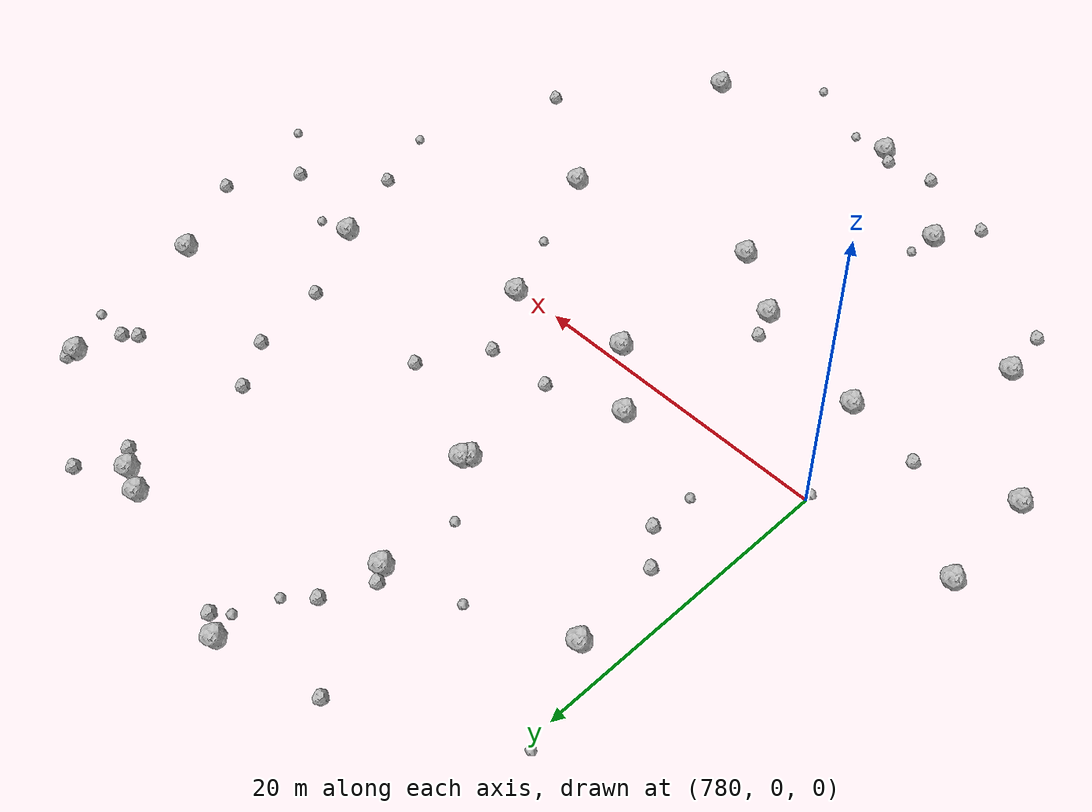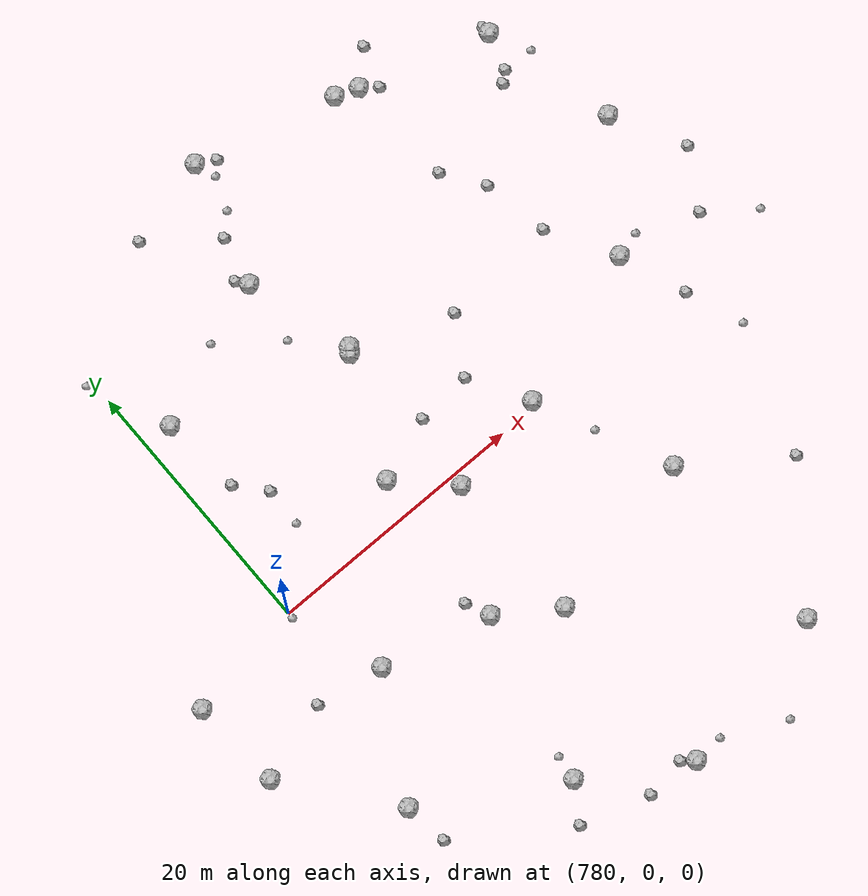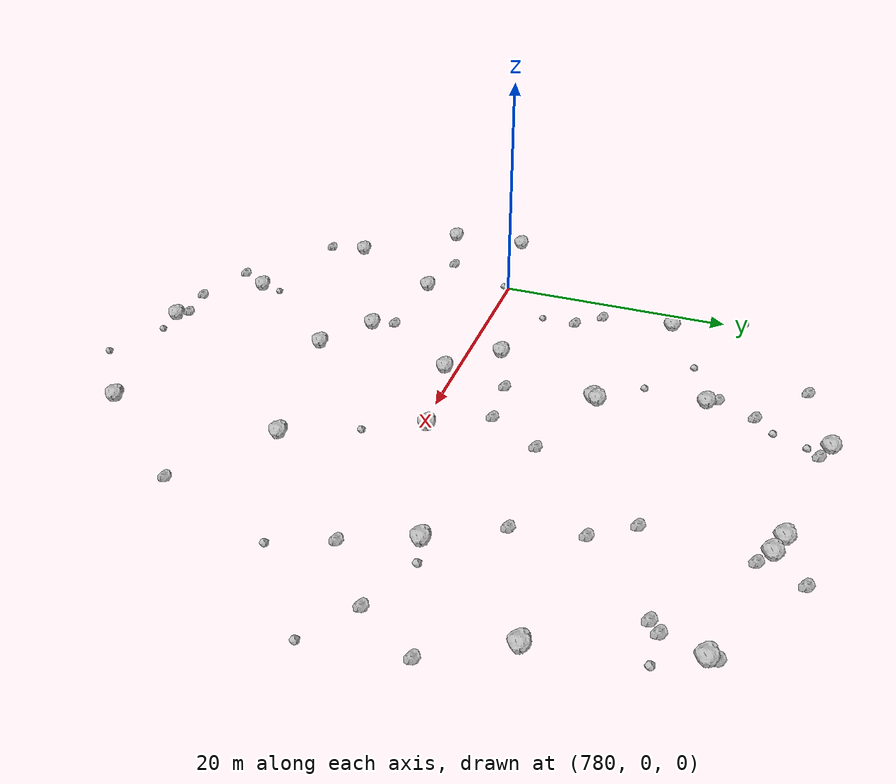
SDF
<sdf version="1.6">
 <world name="default">
  <include><uri>model://sun</uri></include>
  <model name="rock1_20_4">
   <include><uri>model://rock1</uri><pose>782.5939833145702 -7.235588865467271 0.5 0 0 0</pose></include>
  </model>
  <model name="rock1_20_5">
   <include><uri>model://rock1</uri><pose>795.3098757681188 -26.662255921284853 0.5 0 0 0</pose></include>
  </model>
  <model name="rock1_20_6">
   <include><uri>model://rock1</uri><pose>795.2789705754401 -12.355336035092964 0.5 0 0 0</pose></include>
  </model>
  <model name="rock1_20_7">
   <include><uri>model://rock1</uri><pose>795.6492270005932 11.838236671775789 0.5 0 0 0</pose></include>
  </model>
  <model name="rock1_20_8">
   <include><uri>model://rock1</uri><pose>814.6923964095968 4.384266192367221 0.5 0 0 0</pose></include>
  </model>
  <model name="rock1_20_9">
   <include><uri>model://rock1</uri><pose>807.7491594796004 -9.664517768007364 0.5 0 0 0</pose></include>
  </model>
  <model name="rock1_20_10">
   <include><uri>model://rock1</uri><pose>795.3813857113013 11.444717746700988 0.5 0 0 0</pose></include>
  </model>
  <model name="rock1_20_11">
   <include><uri>model://rock1</uri><pose>820.7359904780596 12.720092587145999 0.5 0 0 0</pose></include>
  </model>
  <model name="rock1_20_12">
   <include><uri>model://rock1</uri><pose>771.4555939140156 -8.22026300176831 0.5 0 0 0</pose></include>
  </model>
  <model name="rock1_20_13">
   <include><uri>model://rock1</uri><pose>793.1325292738541 19.94625030033331 0.5 0 0 0</pose></include>
  </model>
  <model name="rock1_20_14">
   <include><uri>model://rock1</uri><pose>787.8059596812107 -22.06730454302167 0.5 0 0 0</pose></include>
  </model>
  <model name="rock1_20_15">
   <include><uri>model://rock1</uri><pose>803.1066494089393 0.4148893485026086 0.5 0 0 0</pose></include>
  </model>
  <model name="rock1_20_16">
   <include><uri>model://rock1</uri><pose>782.256994254969 15.728166615361737 0.5 0 0 0</pose></include>
  </model>
  <model name="rock1_20_17">
   <include><uri>model://rock1</uri><pose>808.3660689145202 25.83965947046741 0.5 0 0 0</pose></include>
  </model>
  <model name="rock1_20_18">
   <include><uri>model://rock1</uri><pose>770.9685277832618 -1.3081234754709499 0.5 0 0 0</pose></include>
  </model>
  <model name="rock1_20_19">
   <include><uri>model://rock1</uri><pose>818.107401169168 22.862926393042073 0.5 0 0 0</pose></include>
  </model>
  <model name="rock1_20_20">
   <include><uri>model://rock1</uri><pose>791.5023014340984 2.7562157564579977 0.5 0 0 0</pose></include>
  </model>
  <model name="rock1_20_21">
   <include><uri>model://rock1</uri><pose>806.6263723251969 26.48032832643687 0.5 0 0 0</pose></include>
  </model>
  <model name="rock1_20_22">
   <include><uri>model://rock1</uri><pose>807.8504888999615 -24.090955519119998 0.5 0 0 0</pose></include>
  </model>
  <model name="rock1_20_23">
   <include><uri>model://rock1</uri><pose>790.866577494195 -9.384976247084271 0.5 0 0 0</pose></include>
  </model>
  <model name="rock1_20_24">
   <include><uri>model://rock1</uri><pose>795.78431963288 29.17232862542062 0.5 0 0 0</pose></include>
  </model>
  <model name="rock1_20_25">
   <include><uri>model://rock1</uri><pose>795.3056938754331 -0.9491984779796674 0.5 0 0 0</pose></include>
  </model>
  <model name="rock1_20_26">
   <include><uri>model://rock1</uri><pose>777.5981039206617 -16.07502388488085 0.5 0 0 0</pose></include>
  </model>
  <model name="rock2_20_0">
   <include><uri>model://rock2</uri><pose>810.770347042625 14.435092461735643 0.3 0 0 0</pose></include>
  </model>
  <model name="rock2_20_1">
   <include><uri>model://rock2</uri><pose>817.2156854977586 20.10003835754455 0.3 0 0 0</pose></include>
  </model>
  <model name="rock2_20_2">
   <include><uri>model://rock2</uri><pose>814.9044241296267 -14.703434279944073 0.3 0 0 0</pose></include>
  </model>
  <model name="rock2_20_3">
   <include><uri>model://rock2</uri><pose>791.2265802617414 -26.413004714449105 0.3 0 0 0</pose></include>
  </model>
  <model name="rock2_20_4">
   <include><uri>model://rock2</uri><pose>782.8160422706718 9.667121468374937 0.3 0 0 0</pose></include>
  </model>
  <model name="rock2_20_5">
   <include><uri>model://rock2</uri><pose>821.1297178409974 3.126133115246006 0.3 0 0 0</pose></include>
  </model>
  <model name="rock2_20_6">
   <include><uri>model://rock2</uri><pose>796.2682089351099 4.5271385151739665 0.3 0 0 0</pose></include>
  </model>
  <model name="rock2_20_7">
   <include><uri>model://rock2</uri><pose>809.5123639229141 24.957935248134895 0.3 0 0 0</pose></include>
  </model>
  <model name="rock2_20_8">
   <include><uri>model://rock2</uri><pose>793.8948431669988 23.703581979079395 0.3 0 0 0</pose></include>
  </model>
  <model name="rock2_20_9">
   <include><uri>model://rock2</uri><pose>816.4480876653898 19.418129537458405 0.3 0 0 0</pose></include>
  </model>
  <model name="rock2_20_10">
   <include><uri>model://rock2</uri><pose>786.0180210368627 -24.822905498580752 0.3 0 0 0</pose></include>
  </model>
  <model name="rock2_20_11">
   <include><uri>model://rock2</uri><pose>800.5027352898414 4.838199304503739 0.3 0 0 0</pose></include>
  </model>
  <model name="rock2_20_12">
   <include><uri>model://rock2</uri><pose>797.1797869782959 28.42052599772002 0.3 0 0 0</pose></include>
  </model>
  <model name="rock2_20_13">
   <include><uri>model://rock2</uri><pose>789.0759550307407 27.44277415394692 0.3 0 0 0</pose></include>
  </model>
  <model name="rock2_20_14">
   <include><uri>model://rock2</uri><pose>802.9636165853974 8.901961548781493 0.3 0 0 0</pose></include>
  </model>
  <model name="rock2_20_15">
   <include><uri>model://rock2</uri><pose>792.4750683736821 20.799877839564303 0.3 0 0 0</pose></include>
  </model>
  <model name="rock2_20_16">
   <include><uri>model://rock2</uri><pose>808.7173228975153 17.405616850087128 0.3 0 0 0</pose></include>
  </model>
  <model name="rock2_20_17">
   <include><uri>model://rock2</uri><pose>811.7392627694958 9.424740892511409 0.3 0 0 0</pose></include>
  </model>
  <model name="rock2_20_18">
   <include><uri>model://rock2</uri><pose>784.6457728494208 7.55112267418437 0.3 0 0 0</pose></include>
  </model>
  <model name="rock2_20_19">
   <include><uri>model://rock2</uri><pose>816.5808487989175 -0.6548114172355568 0.3 0 0 0</pose></include>
  </model>
  <model name="rock2_20_20">
   <include><uri>model://rock2</uri><pose>777.999620553576 -19.402122113886456 0.3 0 0 0</pose></include>
  </model>
  <model name="rock2_20_21">
   <include><uri>model://rock2</uri><pose>818.0310551767257 23.473899954655906 0.3 0 0 0</pose></include>
  </model>
  <model name="rock2_20_22">
   <include><uri>model://rock2</uri><pose>810.5649080611162 27.97718178575282 0.3 0 0 0</pose></include>
  </model>
  <model name="rock2_20_23">
   <include><uri>model://rock2</uri><pose>794.3767889900857 -25.92367059177459 0.3 0 0 0</pose></include>
  </model>
  <model name="rock2_20_24">
   <include><uri>model://rock2</uri><pose>823.6331206210384 7.367657714206665 0.3 0 0 0</pose></include>
  </model>
  <model name="rock2_20_25">
   <include><uri>model://rock2</uri><pose>777.3892617652488 -6.324630845609548 0.3 0 0 0</pose></include>
  </model>
  <model name="rock2_20_26">
   <include><uri>model://rock2</uri><pose>790.0294690895342 -7.5468236547635605 0.3 0 0 0</pose></include>
  </model>
  <model name="rock3_20_0">
   <include><uri>model://rock3</uri><pose>802.2373578904679 -28.746340113056757 0.2 0 0 0</pose></include>
  </model>
  <model name="rock3_20_1">
   <include><uri>model://rock3</uri><pose>819.5841344744279 19.942846614547292 0.2 0 0 0</pose></include>
  </model>
  <model name="rock3_20_2">
   <include><uri>model://rock3</uri><pose>788.0111717038731 -20.170788291973867 0.2 0 0 0</pose></include>
  </model>
  <model name="rock3_20_3">
   <include><uri>model://rock3</uri><pose>792.5607591629484 15.056052101006301 0.2 0 0 0</pose></include>
  </model>
  <model name="rock3_20_4">
   <include><uri>model://rock3</uri><pose>779.9794939577903 -0.45531347038166814 0.2 0 0 0</pose></include>
  </model>
  <model name="rock3_20_5">
   <include><uri>model://rock3</uri><pose>816.6134061754169 4.900186080255374 0.2 0 0 0</pose></include>
  </model>
  <model name="rock3_20_6">
   <include><uri>model://rock3</uri><pose>824.6319592390206 0.48656761423960404 0.2 0 0 0</pose></include>
  </model>
  <model name="rock3_20_7">
   <include><uri>model://rock3</uri><pose>796.3051626240903 27.548778279380933 0.2 0 0 0</pose></include>
  </model>
  <model name="rock3_20_8">
   <include><uri>model://rock3</uri><pose>779.4921808842801 21.812076141861546 0.2 0 0 0</pose></include>
  </model>
  <model name="rock3_20_9">
   <include><uri>model://rock3</uri><pose>805.1371387061721 -4.0593793403525815 0.2 0 0 0</pose></include>
  </model>
  <model name="rock3_20_10">
   <include><uri>model://rock3</uri><pose>788.2161054452313 18.41472431453156 0.2 0 0 0</pose></include>
  </model>
  <model name="rock3_20_11">
   <include><uri>model://rock3</uri><pose>797.584468108191 -26.530204526802358 0.2 0 0 0</pose></include>
  </model>
  <model name="rock3_20_12">
   <include><uri>model://rock3</uri><pose>818.2604893140434 -5.025582129351804 0.2 0 0 0</pose></include>
  </model>
  <model name="rock3_20_13">
   <include><uri>model://rock3</uri><pose>784.5587884179868 4.561595553608598 0.2 0 0 0</pose></include>
  </model>
  <model name="rock3_20_14">
   <include><uri>model://rock3</uri><pose>795.3188641278285 25.084575374582478 0.2 0 0 0</pose></include>
  </model>
 </world>
</sdf>
